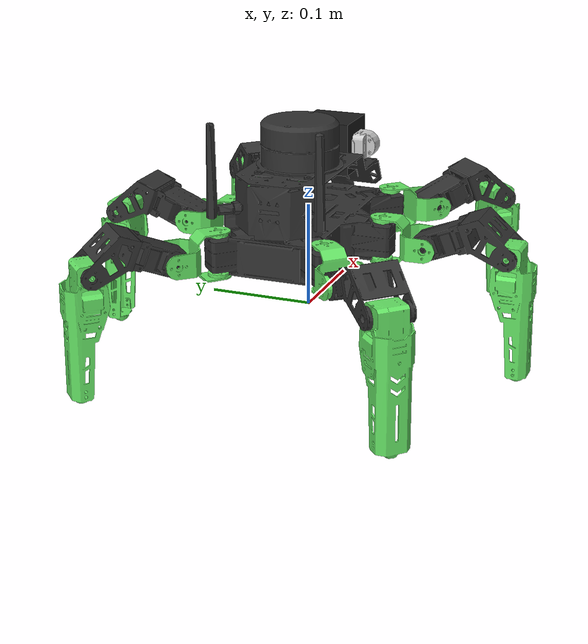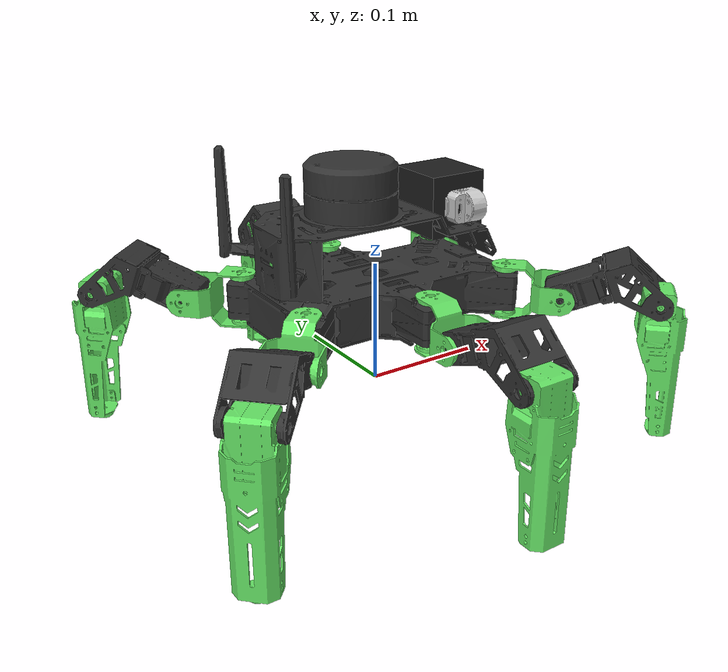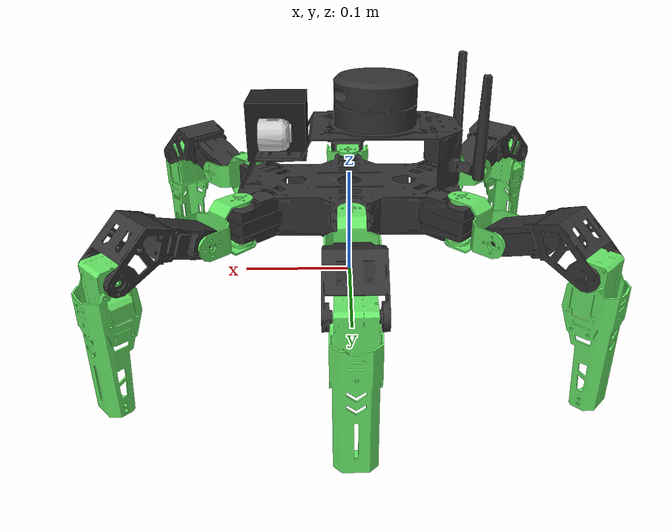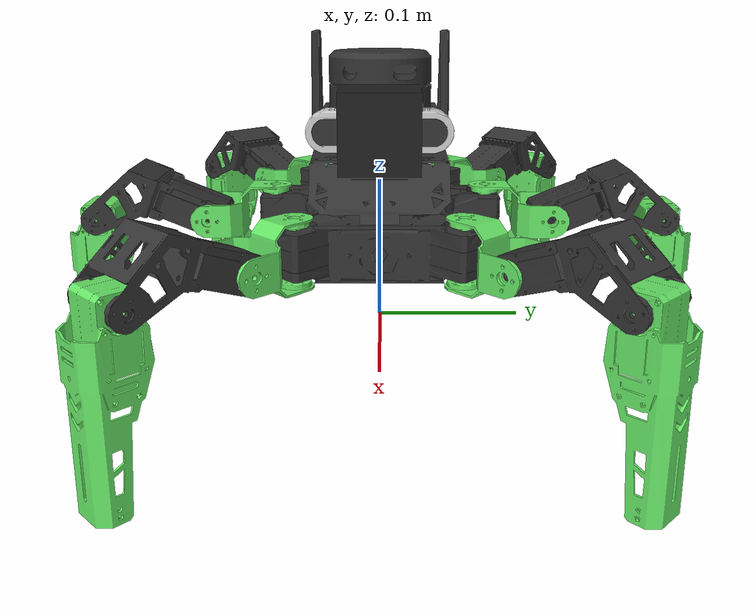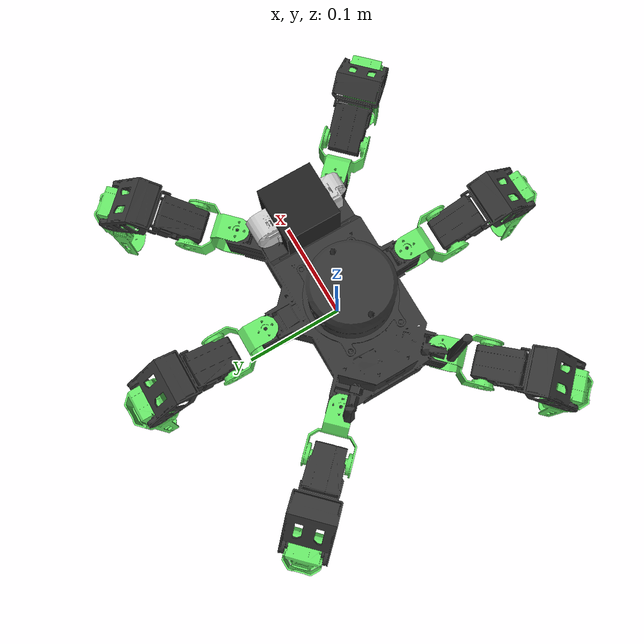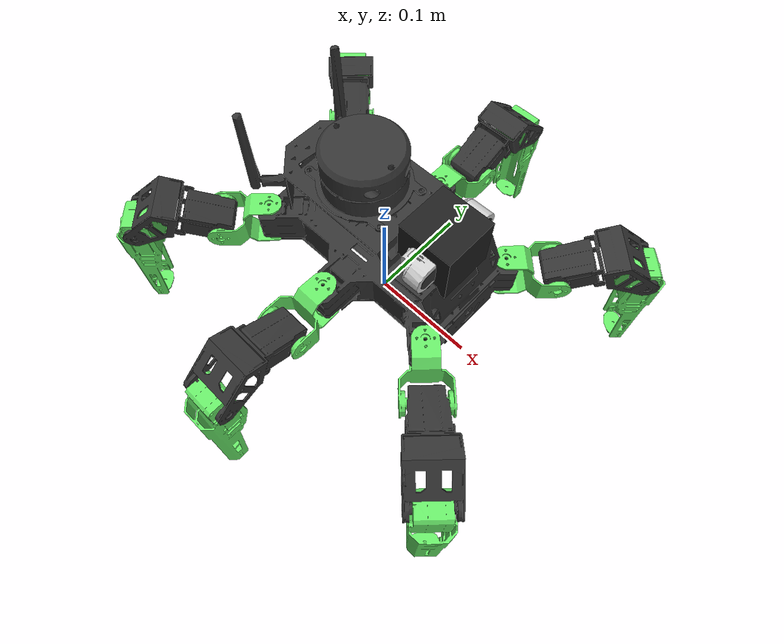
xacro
<?xml version="1.0"?>

<robot xmlns:xacro="http://www.ros.org/wiki/xacro" name="jethexa">
    <xacro:arg name="prefix" default="" />
    <xacro:arg name="laser_view" default="" />

    <!-- Import jethexa macro -->
    <xacro:include filename="$(find jethexa_description)/urdf/jethexa_description.urdf.xacro" />
    <!-- Import camera macro -->
    <xacro:include filename="$(find jethexa_description)/urdf/jethexa_camera.urdf.xacro" />

    <!-- Import Rviz colors -->
    <xacro:include filename="$(find jethexa_description)/gazebo/jethexa.materials.xacro" />

    <!-- Import jethexa ros_control description -->
    <xacro:include filename="$(find jethexa_description)/gazebo/jethexa.gazebo.xacro" />
    <xacro:include filename="$(find jethexa_description)/gazebo/jethexa.transmission.xacro" />

    <!-- Used for fixing robot -->
    <link name="$(arg prefix)base_link"/>
    <gazebo reference="$(arg prefix)base_link">
        <static>false</static>
    </gazebo>

    <xacro:jethexa parent="$(arg prefix)base_link" prefix="$(arg prefix)">
        <origin xyz="0 0 0.075" rpy="0 0 0" />
    </xacro:jethexa>

    <xacro:jethexa_gazebo prefix="$(arg prefix)" laser_view="$(arg laser_view)"></xacro:jethexa_gazebo>
    <xacro:jethexa_gazeboo_transmission prefix="$(arg prefix)"> </xacro:jethexa_gazeboo_transmission>

</robot>

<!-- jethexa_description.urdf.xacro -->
<robot xmlns:xacro="http://ros.org/wiki/xacro">
    <!-- parameters -->
    <xacro:property name="my_pi" value="3.1415926535897931"/>
    <xacro:property name="body_length_x" value="0.3556"/>
    <xacro:property name="body_length_y" value="0.165"/>
    <xacro:property name="coxa_length" value="0.04505032"/>
    <xacro:property name="femur_length" value="0.07703"/>

    <!-- Joint properties -->
    <xacro:property name="joint_lower_limit" value="-${3.14}" />
    <xacro:property name="joint_upper_limit" value="${3.14}" />
    <xacro:property name="joint_effort" value="100.0" />
    <xacro:property name="joint_velocity" value="10.0" />

    <!-- Leg macro -->
    <xacro:macro name="leg" params="prefix side position x y angle axis">
        <!-- leg position -->
        <joint name="${prefix}leg_center_joint_${side}${position}" type="fixed">
            <origin xyz="${x} ${y} 0.0" rpy="0.0 0.0 0.0" />
            <parent link="${prefix}body_link" />
            <child link="${prefix}leg_center_${side}${position}" />
        </joint>
        <link name="${prefix}leg_center_${side}${position}">
            <inertial>
                <origin xyz="0.0 0.0 0.0" rpy="0.0 0.0 0.0" />
                <mass value="0.0001"/>
                <inertia ixx="1e-6" ixy="0.0" ixz="0.0" iyy="1e-6" iyz="0.0" izz="1e-6" />
            </inertial>
        </link>
        <!-- coxa -->
        <joint name="${prefix}coxa_joint_${side}${position}" type="revolute">
            <origin xyz="0.0 0.0 0.0" rpy="0.0 0.0 ${angle}" />
            <parent link="${prefix}leg_center_${side}${position}" />
            <child link="${prefix}coxa_${side}${position}" />
            <axis xyz="0.0 0.0 1.0" />
            <limit lower="${joint_lower_limit}" upper="${joint_upper_limit}" effort="${joint_effort}" velocity="${joint_velocity}" />
	    <dynamics damping="0.01" />
        </joint>
        <link name="${prefix}coxa_${side}${position}">
            <visual>
                <origin xyz="0.0 0.0 0.0" rpy="0.0 0.0 0.0"/>
                <geometry>
		    <mesh filename="package://jethexa_description/meshes/simplify/coxa.stl" scale="0.001 0.001 0.001"/>
                </geometry>
                <material name="">
                    <color rgba="0.4 0.9 0.4 1" />
                </material>
            </visual>
            <collision>
                <origin xyz="0.02 0.0 0.0" rpy="0.0 ${my_pi/2} 0.0" />
                <geometry>
		    <cylinder radius="0.01" length="${coxa_length}"/>
                </geometry>
            </collision>
            <inertial>
                <origin xyz="0.02 0.0 0.0" rpy="0.0 0.0 0.0" />
                <mass value="0.05"/>
                <inertia ixx="1e-3" ixy="0.0" ixz="0.0" iyy="1e-3" iyz="0.0" izz="1e-3" />
            </inertial>
        </link>
        <!-- femur -->
        <joint name="${prefix}femur_joint_${side}${position}" type="revolute">
            <origin xyz="${coxa_length} 0.0 0.0" rpy="${axis*my_pi/2} 0.0 0.0" />
            <parent link="${prefix}coxa_${side}${position}" />
            <child link="${prefix}femur_${side}${position}" />
            <axis xyz="0.0 0.0 ${axis}" />
            <limit lower="${joint_lower_limit}" upper="${joint_upper_limit}" effort="${joint_effort}" velocity="${joint_velocity}" />
	    <dynamics damping="0.01" />
        </joint>
        <link name="${prefix}femur_${side}${position}">
            <visual>
                <origin xyz="0.0 0.0 0.0" rpy="0.0 0.0 0.0"/>
                <geometry>
		    <mesh filename="package://jethexa_description/meshes/simplify/${side}_femur.stl" scale="0.001 0.001 0.001"/>
                </geometry>
                <material name="">
                    <color rgba="0.2 0.2 0.2 1" />
                </material>
            </visual>
            <collision>
                <origin xyz="${femur_length/2} 0.0 0.0" rpy="0.0 ${my_pi/2} 0.0" />
                <geometry>
		    <cylinder radius="0.01" length="${femur_length}"/>
                </geometry>
            </collision>
            <inertial>
                <origin xyz="0.035 0.0 0.0" rpy="0.0 0.0 0.0" />
                <mass value="0.06"/>
                <inertia ixx="1e-3" ixy="0.0" ixz="0.0" iyy="1e-3" iyz="0.0" izz="1e-3" />
            </inertial>
        </link>

        <!-- tibia -->
        <xacro:property name="tibia_length" value="0.123"/>
        <joint name="${prefix}tibia_joint_${side}${position}" type="revolute">
		<origin xyz="${femur_length} 0.0 0.0" rpy="0.0 0.0 ${-axis*(my_pi/2 - 5*my_pi/180)}" />
            <parent link="${prefix}femur_${side}${position}" />
            <child link="${prefix}tibia_${side}${position}" />
            <axis xyz="0.0 0.0 ${axis}" />
            <limit lower="${joint_lower_limit}" upper="${joint_upper_limit}" effort="${joint_effort}" velocity="${joint_velocity}" />
	    <dynamics damping="0.01" />
        </joint>
        <link name="${prefix}tibia_${side}${position}">
            <visual>
                <origin xyz="0.0 0.0 0.0" rpy="0.0 0.0 ${-axis*0.08727}"/>
                <geometry>
		    <mesh filename="package://jethexa_description/meshes/simplify/${side}_tibia.stl" scale="0.001 0.001 0.001"/>
                </geometry>
                <material name="">
                    <color rgba="0.4 0.9 0.4 1" />
                </material>
            </visual>
            <collision name="tibia_collision_${side}${position}">
                <origin xyz="${tibia_length/2} 0.0 0.0" rpy="0.0 ${my_pi/2} 0.0"/>
                <geometry>
		    <cylinder radius="0.01" length="${tibia_length}"/>
                </geometry>
            </collision>
            <inertial>
                <origin xyz="0.06 0.0 0.0" rpy="0.0 0.0 0.0" />
                <mass value="0.07"/>
                <inertia ixx="1e-3" ixy="0.0" ixz="0.0" iyy="1e-3" iyz="0.0" izz="1e-3" />
            </inertial>
            <gazebo reference="${prefix}tibia_${side}${position}">
                <kp>100000.0</kp>
                <kd>150.0</kd>
                <mu1>1.5</mu1>
                <mu2>1.2</mu2>
                <maxVel>1.0</maxVel>
                <minDepth>0.001</minDepth>
                <material>Gazebo/Grey</material>
            </gazebo>
        </link>
        <!-- END -->
        <joint name="${prefix}end_joint${side}${position}" type="fixed">
	    <origin xyz="0.123 0.0 0.0" rpy="0.0 0.0 0.0"/>
            <parent link="${prefix}tibia_${side}${position}" />
            <child link="${prefix}end_${side}${position}" />
            <axis xyz="0.0 0.0 0.0" />
        </joint>
        <link name="${prefix}end_${side}${position}">
        </link>
    </xacro:macro>

    <xacro:macro name="jethexa" params="prefix parent *origin">
        <joint name="${prefix}base_joint" type="fixed">
            <parent link="${parent}"/>
            <child link="${prefix}body_link" />
            <xacro:insert_block name="origin"/>
        </joint>
        <link name="${prefix}body_link">
            <visual>
                 <!-- Revert to original mesh visual -->
	        <origin xyz="0.0 0.0 0.0" rpy="0.0 0.0 0.0" />
                <geometry>
                    <!-- CORRECT THE SCALE for the simplified mesh -->
		    <mesh filename="package://jethexa_description/meshes/simplify/body.stl" scale="0.001 0.001 0.001"/>
                </geometry>
                <material name="">
                    <color rgba="0.2 0.2 0.2 1" /> <!-- Adjust color if needed -->
                </material>
            </visual>
            <collision>
                <!-- Keep simplified collision -->
		<origin xyz="0.0 0.0 0.0" rpy="0.0 0.0 0.0"/>
                <geometry>
		    <box size="${body_length_x} ${body_length_y} 0.05"/>
                </geometry>
            </collision>
            <inertial>
                <origin xyz="0.0 0.0 0.0" rpy="0.0 0.0 0.0" />
                <mass value="0.8"/>
                <inertia ixx="0.01" ixy="0.0" ixz="0.0" iyy="0.01" iyz="0.0" izz="0.01" />
            </inertial>
        </link>
	<joint name="${prefix}lidar_joint" type="fixed">
            <parent link="${prefix}body_link"/>
            <child link="${prefix}lidar_visual_link"/>
            <origin xyz="-0.023 0.0 0.1" rpy="0.0 0.0 0.0"/>
        </joint>

	<link name="${prefix}lidar_visual_link">
		<visual>
			<origin xyz="0.0 0.0 -0.033" rpy="0.0 0.0 1.571" />
			<geometry>
				<mesh filename="package://jethexa_description/meshes/simplify/g4.stl" scale="1.0 1.0 1.0"/>
			</geometry>
			<material name="">
                    		<color rgba="0.2 0.2 0.2 1" />
			</material>
		</visual>
		<collision>
			<origin xyz="0.0 0.0 -0.033" rpy="0.0 0.0 1.571" />
			<geometry>
				<mesh filename="package://jethexa_description/meshes/simplify/g4.stl" scale="1.0 1.0 1.0"/>
			</geometry>
			<material name="">
                    		<color rgba="0.2 0.2 0.2 1" />
			</material>
		</collision>
		<inertial>
			<origin xyz="0.0 0.0 0.0" rpy="0.0 0.0 0.0" />
			<mass value="0.1"/>
			<inertia ixx="1e-4" ixy="0.0" ixz="0.0" iyy="1e-4" iyz="0.0" izz="1e-4" />
		</inertial>
	</link>

        <!-- ADDED: Gazebo LiDAR Sensor attached to the visual link -->
        <gazebo reference="${prefix}lidar_visual_link">
            <!-- Sensor definition removed to avoid conflict with jethexa.gazebo.xacro -->
        </gazebo>
        <!-- END ADDED -->

        <!-- Depth camera properties -->
        <joint name="${prefix}depth_camera_joint" type="fixed">
            <parent link="${prefix}body_link"/>
            <child link="${prefix}depth_camera_link"/>
            <origin xyz="0.062455 0.0 0.07" rpy="0.0 0.0 0.0"/>
        </joint>
        <link name="${prefix}depth_camera_link">
		<visual>
			<origin xyz="0.0 0.0 -0.015" rpy="0.0 0.0 ${my_pi/2}" />
			<geometry>
				<mesh filename="package://jethexa_description/meshes/simplify/dabai.stl" scale="1.0 1.0 1.0"/>
			</geometry>
			<material name="">
				<color rgba="0.8 0.8 0.8 1" />
			</material>
		</visual>
		<visual>
			<origin xyz="0.0105 0.0 -0.025" rpy="0.0 0.0 ${my_pi/2}" />
			<geometry>
				<mesh filename="package://jethexa_description/meshes/simplify/dabai_len.stl" scale="1.0 1.0 1.0"/>
			</geometry>
			<material name="">
				<color rgba="0.2 0.2 0.2 1" />
			</material>
		</visual>
		<collision>
			<origin xyz="0.0 0.0 -0.015" rpy="0.0 0.0 ${my_pi/2}" />
			<geometry>
				<mesh filename="package://jethexa_description/meshes/simplify/dabai.stl" scale="1.0 1.0 1.0"/>
			</geometry>
			<material name="">
				<color rgba="0.8 0.8 0.8 1"/>
			</material>
		</collision>
		<inertial>
			<origin xyz="0.0 0.0 0.0" rpy="0.0 0.0 0.0" />
			<mass value="0.05"/>
			<inertia ixx="1e-5" ixy="0.0" ixz="0.0" iyy="1e-5" iyz="0.0" izz="1e-5" />
		</inertial>
	</link>

    <!-- ADDED: Gazebo Depth Camera Sensor attached to the depth camera link -->
    <gazebo reference="${prefix}depth_camera_link">
        <sensor type="depth" name="jethexa_depth_camera_sensor">
            <always_on>true</always_on>
            <update_rate>20</update_rate> <!-- Adjust rate as needed -->
            <camera name="depth_cam">
                <horizontal_fov>1.047</horizontal_fov> <!-- Approx 60 degrees -->
                <image>
                    <width>320</width> <!-- Lower resolution for performance -->
                    <height>240</height>
                    <format>R8G8B8</format> <!-- Format for associated RGB image -->
                </image>
                <clip>
                    <near>0.1</near> <!-- Min depth range -->
                    <far>5.0</far> <!-- Max depth range -->
                </clip>
                <noise>
                    <type>gaussian</type>
                    <mean>0.0</mean>
                    <stddev>0.007</stddev> <!-- Noise based on Kinect -->
                </noise>
            </camera>
            <plugin name="depth_camera_controller" filename="libgazebo_ros_openni_kinect.so">
                <!-- Plugin parameters -->
                <baseline>0.2</baseline> <!-- Baseline for stereo simulation -->
                <alwaysOn>true</alwaysOn>
                <updateRate>0.0</updateRate> <!-- Use sensor update rate -->
                <cameraName>depth_camera</cameraName> <!-- Namespace for topics -->
                <imageTopicName>/jethexa/depth_camera/rgb/image_raw</imageTopicName>
                <cameraInfoTopicName>/jethexa/depth_camera/rgb/camera_info</cameraInfoTopicName>
                <depthImageTopicName>/jethexa/depth_camera/depth/image_raw</depthImageTopicName>
                <depthImageCameraInfoTopicName>/jethexa/depth_camera/depth/camera_info</depthImageCameraInfoTopicName>
                <pointCloudTopicName>/jethexa/depth_camera/depth/points</pointCloudTopicName>
                <frameName>${prefix}depth_camera_link</frameName> <!-- Link TF frame -->
                <pointCloudCutoff>0.1</pointCloudCutoff> <!-- Min distance for points -->
                <pointCloudCutoffMax>5.0</pointCloudCutoffMax> <!-- Max distance for points -->
                <distortionK1>0.0</distortionK1>
                <distortionK2>0.0</distortionK2>
                <distortionK3>0.0</distortionK3>
                <distortionT1>0.0</distortionT1>
                <distortionT2>0.0</distortionT2>
                <CxPrime>0</CxPrime>
                <Cx>0</Cx>
                <Cy>0</Cy>
                <focalLength>0</focalLength> <!-- Will be calculated by plugin -->
                <hackBaseline>0</hackBaseline>
            </plugin>
        </sensor>
    </gazebo>
    <!-- END ADDED -->

    <!-- Instantiate the depth camera using the macro -->
    <xacro:depth_camera parent="${prefix}depth_camera_link" prefix="${prefix}">
        <!-- Define the origin of the camera relative to the parent link -->
        <origin xyz="0 0 0" rpy="0 0 0" />
    </xacro:depth_camera>

	<joint name="${prefix}head_pan_joint" type="revolute">
		<parent link="${prefix}body_link"/>
		<child link="${prefix}head_pan_link"/>
		<axis xyz="0.0 0.0 1.0" />
		<origin xyz="0.0 0.0 0.0" rpy="0.0 0.0 0.0"/>
		<limit lower="-3.14" upper="3.14" effort="10000" velocity="100" />
	</joint>
	<link name="${prefix}head_pan_link">
	</link>
	<joint name="${prefix}head_tilt_joint" type="revolute">
		<parent link="${prefix}head_pan_link"/>
		<child link="${prefix}head_tilt_link"/>
		<axis xyz="0.0 0.0 1.0" />
		<origin xyz="0.0 0.0 0.0" rpy="0.0 0.0 0.0"/>
		<limit lower="-3.14" upper="3.14" effort="10000" velocity="100" />
	</joint>
	<link name="${prefix}head_tilt_link">
	</link>

        <xacro:leg prefix="${prefix}" side="R" position="R" x="-0.093205" y="-0.05098" angle="-${my_pi*3/4}" axis="1" />
        <xacro:leg prefix="${prefix}" side="R" position="M" x="0.0" y="-0.073535" angle="-${my_pi/2}" axis="1" />
        <xacro:leg prefix="${prefix}" side="R" position="F" x="0.093205" y="-0.05098" angle="-${my_pi/4}" axis="1" />
        <xacro:leg prefix="${prefix}" side="L" position="R" x="-0.093205" y="0.05098" angle="${my_pi*3/4}" axis="-1" />
        <xacro:leg prefix="${prefix}" side="L" position="M" x="0.0" y="0.07353" angle="${my_pi/2}" axis="-1" />
        <xacro:leg prefix="${prefix}" side="L" position="F" x="0.093205" y="0.05098" angle="${my_pi/4}" axis="-1" />
    </xacro:macro>
</robot>

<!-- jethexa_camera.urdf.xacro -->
<robot xmlns:xacro="http://www.ros.org/wiki/xacro">

    <!-- Depth Camera -->
    <xacro:macro name="depth_camera" params="parent prefix *origin">
        <!-- Camera Link -->
        <link name="${prefix}camera_link">
            <visual>
                <geometry>
                    <box size="0.05 0.05 0.05"/>
                </geometry>
                <material name="black"/>
            </visual>
            <collision>
                <geometry>
                    <box size="0.05 0.05 0.05"/>
                </geometry>
            </collision>
            <inertial>
                <mass value="0.1"/>
                <inertia ixx="0.001" ixy="0" ixz="0" iyy="0.001" iyz="0" izz="0.001"/>
            </inertial>
        </link>

        <!-- Camera Joint -->
        <joint name="${prefix}camera_joint" type="fixed">
            <xacro:insert_block name="origin"/>
            <parent link="${parent}"/>
            <child link="${prefix}camera_link"/>
        </joint>

        <!-- Camera Plugin -->
        <gazebo reference="${prefix}camera_link">
            <material>Gazebo/Black</material>
        </gazebo>

        <!-- === Depth Camera Plugin === -->
        <gazebo reference="${prefix}camera_link">
            <sensor type="depth" name="${prefix}_depth_camera">
                <update_rate>20.0</update_rate>
                <camera name="depth_cam">
                    <horizontal_fov>1.047</horizontal_fov> <!-- ~60 degrees -->
                    <image>
                        <width>640</width>
                        <height>480</height>
                        <format>R8G8B8</format>
                    </image>
                    <clip>
                        <near>0.05</near>
                        <far>3.0</far>
                    </clip>
                </camera>
                <plugin name="${prefix}_camera_plugin" filename="libgazebo_ros_openni_kinect.so">
                    <baseline>0.2</baseline>
                    <alwaysOn>true</alwaysOn>
                    <updateRate>10.0</updateRate>
                    <cameraName>${prefix}_depth_camera</cameraName>
                    <imageTopicName>/jethexa/depth_camera/rgb/image_raw</imageTopicName> <!-- Default RGB topic -->
                    <depthImageTopicName>/jethexa/depth_camera/depth/image_raw</depthImageTopicName> <!-- Our desired depth topic -->
                    <pointCloudTopicName>/jethexa/depth_camera/depth/points</pointCloudTopicName>
                    <cameraInfoTopicName>/jethexa/depth_camera/depth/camera_info</cameraInfoTopicName> <!-- Our desired info topic -->
                    <depthImageCameraInfoTopicName>/jethexa/depth_camera/depth/camera_info</depthImageCameraInfoTopicName>
                    <frameName>${prefix}camera_link</frameName>
                    <pointCloudCutoff>0.05</pointCloudCutoff>
                    <distortionK1>0.0</distortionK1>
                    <distortionK2>0.0</distortionK2>
                    <distortionK3>0.0</distortionK3>
                    <distortionT1>0.0</distortionT1>
                    <distortionT2>0.0</distortionT2>
                    <CxPrime>0</CxPrime>
                    <Cx>0</Cx>
                    <Cy>0</Cy>
                    <focalLength>0</focalLength>
                    <hackBaseline>0</hackBaseline>
                    <robotNamespace>/jethexa</robotNamespace> <!-- Set namespace correctly -->
                </plugin>
            </sensor>
        </gazebo>

    </xacro:macro>

</robot>
